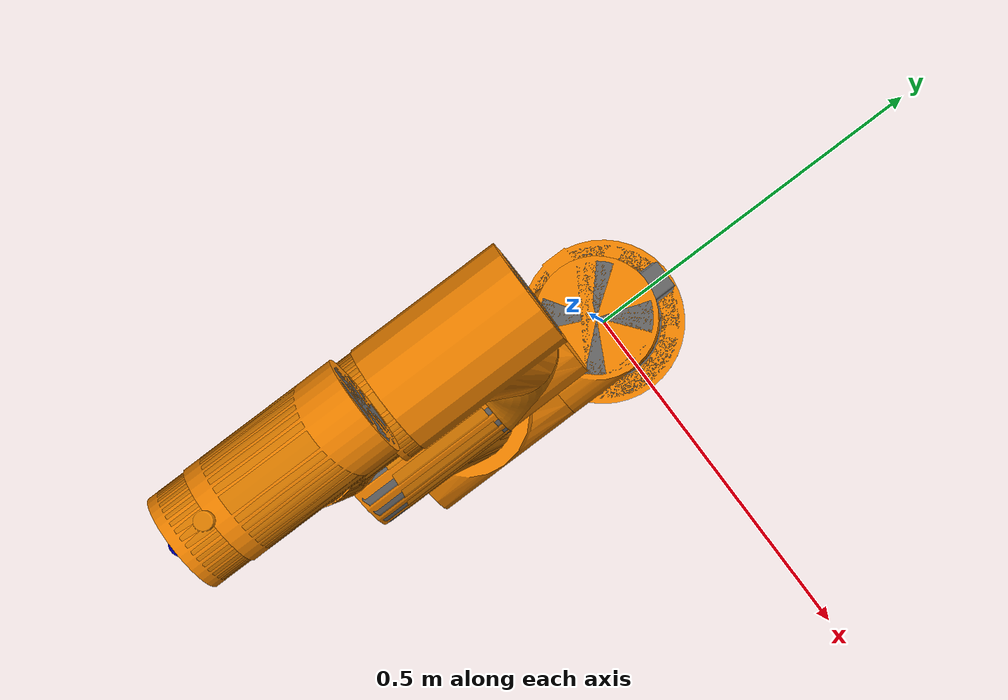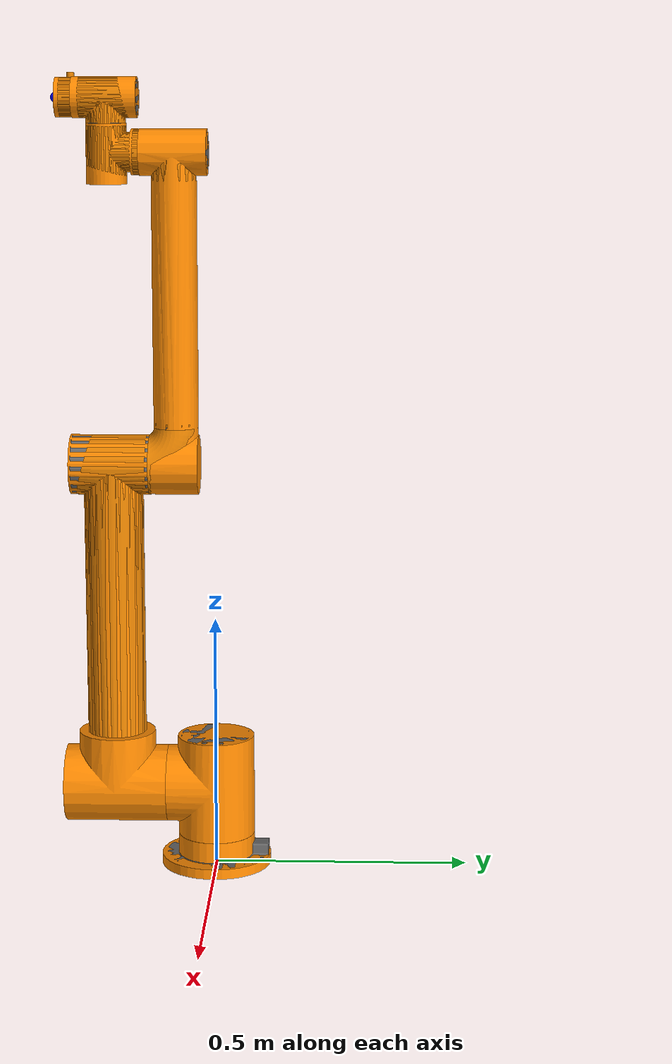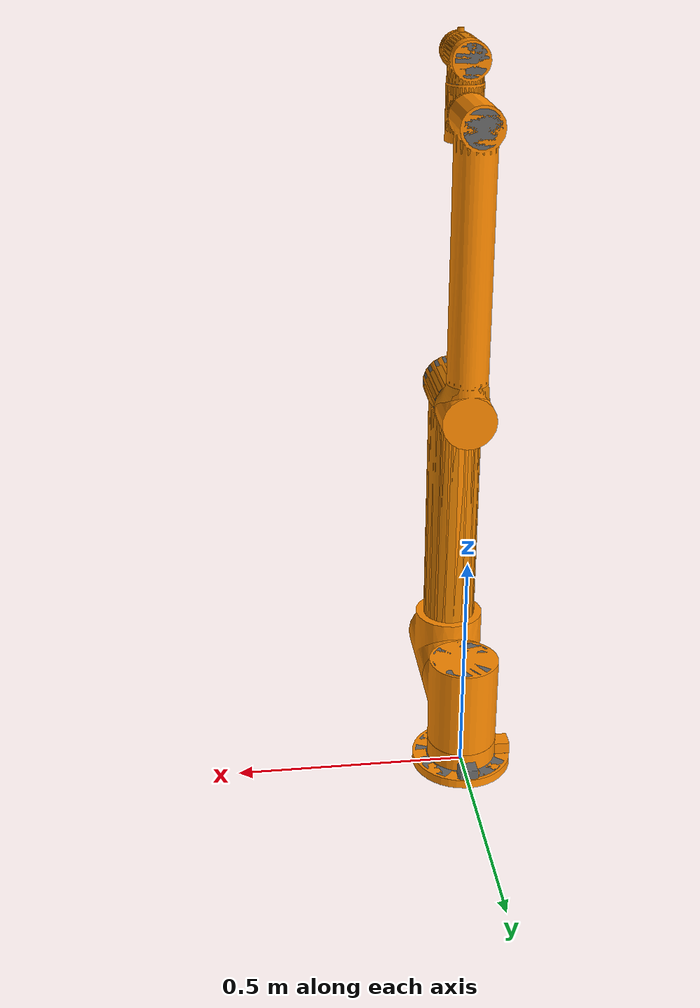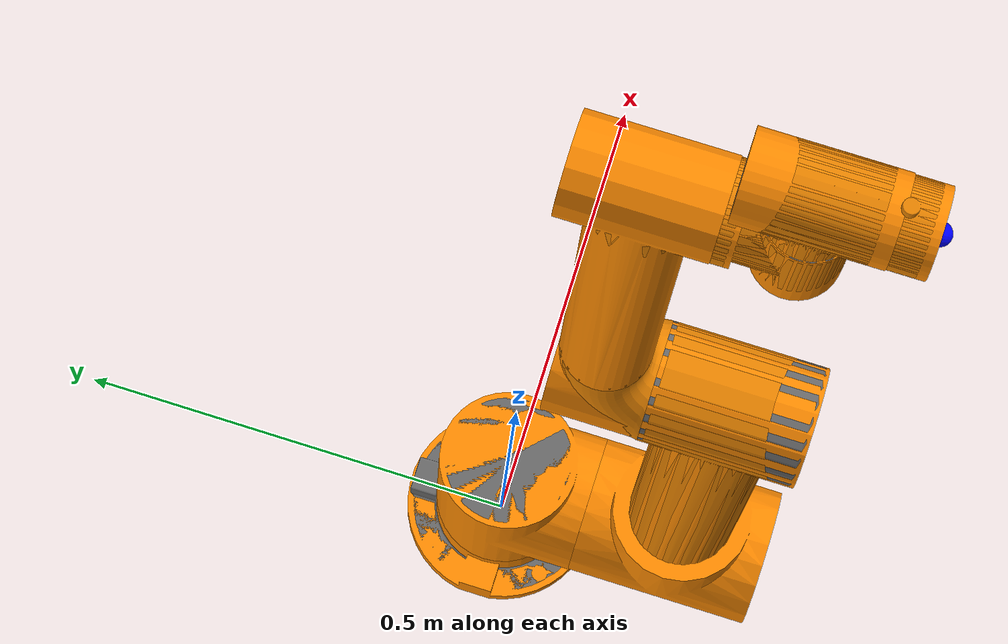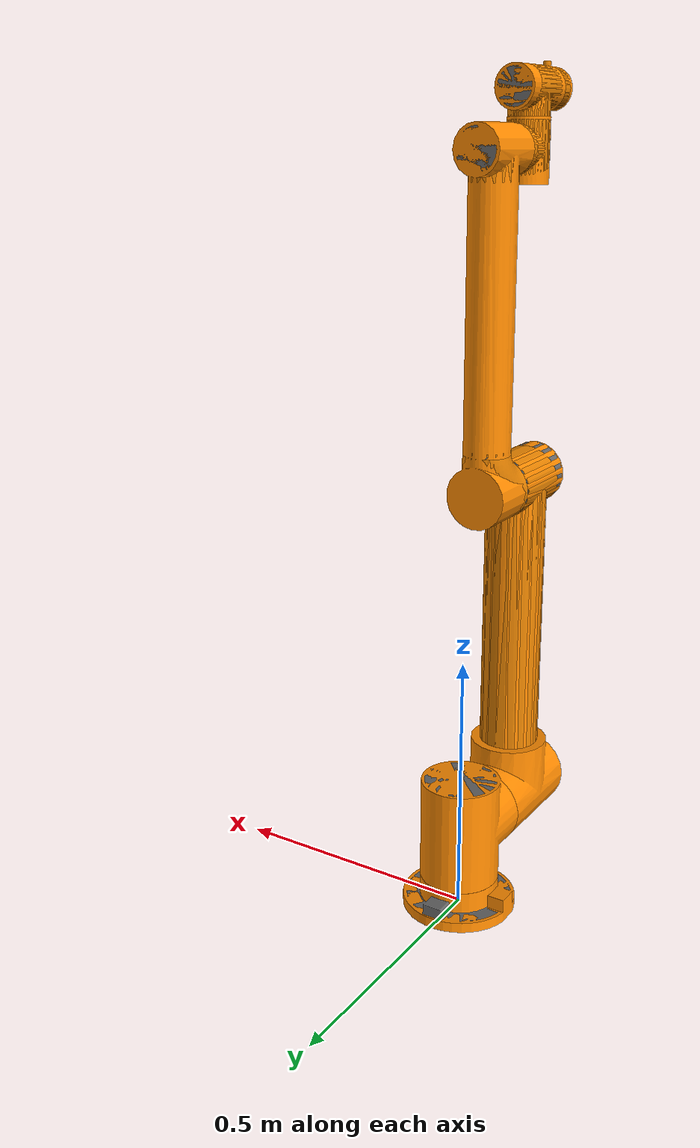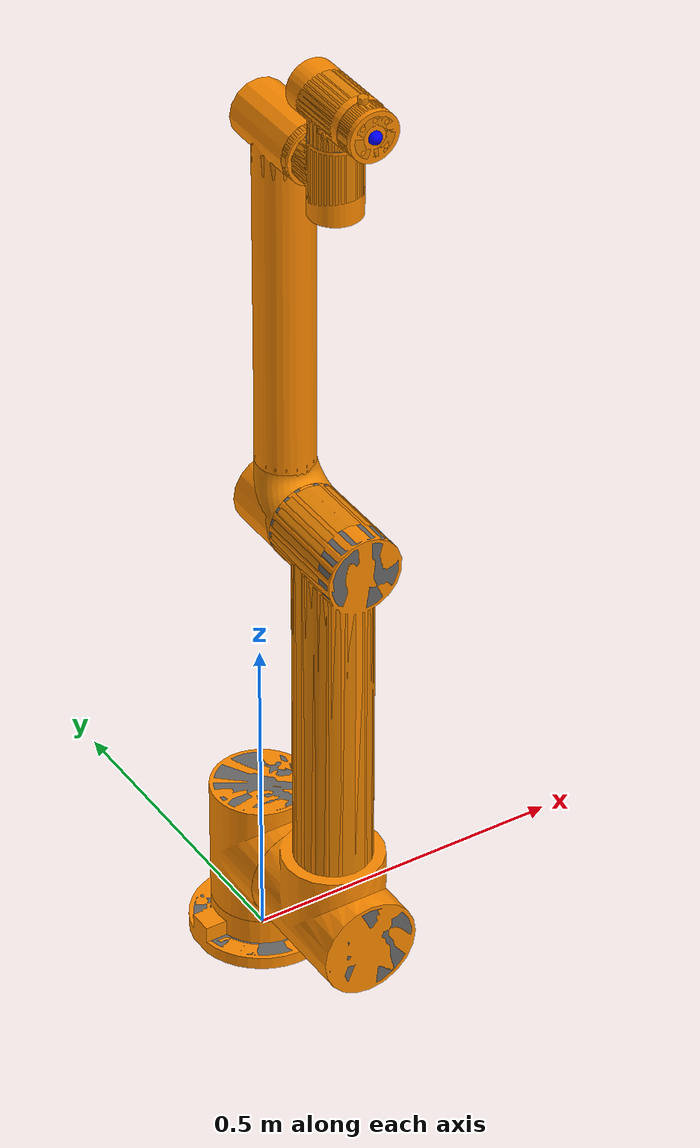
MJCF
<mujoco model="aubo_i10">

  <asset>
    <mesh name="link0" file="meshes/link0.STL"/>
    <mesh name="link1" file="meshes/link1.STL"/>
    <mesh name="link2" file="meshes/link2.STL"/>
    <mesh name="link3" file="meshes/link3.STL"/>
    <mesh name="link4" file="meshes/link4.STL"/>
    <mesh name="link5" file="meshes/link5.STL"/>
    <mesh name="link6" file="meshes/link6.STL"/>

    <material name="MaterialFBXASC032FBXASC03528" specular="0.0" shininess="0.25" rgba="0.411765 0.411765 0.411765 1.000000"/>
    <material name="MaterialFBXASC032FBXASC03529" specular="0.0" shininess="0.25" rgba="0.909804 0.513726 0.000000 1.000000"/>
    <mesh name="link0_vis" file="obj_meshes/link0/link0.obj"/>
    <mesh name="link1_0_vis" file="obj_meshes/link1/link1_0.obj"/>
    <mesh name="link1_1_vis" file="obj_meshes/link1/link1_1.obj"/>
    <mesh name="link2_0_vis" file="obj_meshes/link2/link2_0.obj"/>
    <mesh name="link2_1_vis" file="obj_meshes/link2/link2_1.obj"/>
    <mesh name="link3_0_vis" file="obj_meshes/link3/link3_0.obj"/>
    <mesh name="link3_1_vis" file="obj_meshes/link3/link3_1.obj"/>
    <mesh name="link4_0_vis" file="obj_meshes/link4/link4_0.obj"/>
    <mesh name="link4_1_vis" file="obj_meshes/link4/link4_1.obj"/>
    <mesh name="link5_0_vis" file="obj_meshes/link5/link5_0.obj"/>
    <mesh name="link5_1_vis" file="obj_meshes/link5/link5_1.obj"/>
    <mesh name="link6_vis" file="obj_meshes/link6/link6.obj"/>
  </asset>

  <actuator>
    <motor ctrllimited="true" ctrlrange="-267 267" joint="shoulder_joint" name="torq_j1"/>
    <motor ctrllimited="true" ctrlrange="-267 267" joint="upperArm_joint" name="torq_j2"/>
    <motor ctrllimited="true" ctrlrange="-133.0 133.0" joint="foreArm_joint" name="torq_j3"/>
    <motor ctrllimited="true" ctrlrange="-49.0 49.0" joint="wrist1_joint" name="torq_j4"/>
    <motor ctrllimited="true" ctrlrange="-13.5 13.5" joint="wrist2_joint" name="torq_j5"/>
    <motor ctrllimited="true" ctrlrange="-13.5 13.5" joint="wrist3_joint" name="torq_j6"/>
  </actuator>

  <worldbody>
  <body name="base" pos="0 0 0">
    <camera mode="fixed" name="robotview" pos="1.0 0 0.4" quat="0.653 0.271 0.271 0.653"/>
    <site name="right_center" pos="0 0 0" size="0.01" rgba="1 0.3 0.3 1" group="2"/>
    <inertial diaginertia="0 0 0" mass="0" pos="0 0 0"/>
    <geom type="mesh" contype="0" conaffinity="0" group="1" density="0" rgba="1 0.545 0 1" mesh="link0"/>
    <geom type="mesh" material="MaterialFBXASC032FBXASC03528" contype="0" conaffinity="0" group="1" mesh="link0_vis" quat="0.707 0.707 0 0"/>
    <body name="shoulder_Link" pos="0 0 0.1632" quat="0 0 0 1">
      <inertial pos="-4e-06 0.005112 -0.026275" quat="0.997565 -0.0697219 -1.82331e-05 0.00151628" mass="10.1801" diaginertia="0.043326 0.0424812 0.0296538"/>
      <joint name="shoulder_joint" pos="0 0 0" axis="0 0 1" range="-6.28319 6.28319" actuatorfrcrange="-267 267" damping="0.1"/>
      <geom type="mesh" contype="0" conaffinity="0" group="0" density="0" rgba="1 0.545 0 1" mesh="link1"/>
      <geom type="mesh" material="MaterialFBXASC032FBXASC03529" contype="0" conaffinity="0" group="1" mesh="link1_0_vis" quat="0.707 0.707 0 0"/>
      <geom type="mesh" material="MaterialFBXASC032FBXASC03528" contype="0" conaffinity="0" group="1" mesh="link1_1_vis" quat="0.707 0.707 0 0"/>
      <body name="upperArm_Link" pos="0 0.2013 0" quat="0.5 -0.5 -0.5 -0.5">
        <inertial pos="0.231117 -1.3e-05 -0.022852" quat="0.505617 0.49432 0.493921 0.506005" mass="18.0964" diaginertia="1.52462 1.50645 0.0641157"/>
        <joint name="upperArm_joint" pos="0 0 0" axis="0 0 1" range="-6.28319 6.28319" actuatorfrcrange="-267 267" damping="0.1"/>
        <geom type="mesh" contype="0" conaffinity="0" group="0" density="0" rgba="1 0.545 0 1" mesh="link2"/>
        <geom type="mesh" material="MaterialFBXASC032FBXASC03529" contype="0" conaffinity="0" group="1" mesh="link2_0_vis" quat="0.707 0.707 0 0"/>
        <geom type="mesh" material="MaterialFBXASC032FBXASC03528" contype="0" conaffinity="0" group="1" mesh="link2_1_vis" quat="0.707 0.707 0 0"/>
        <body name="foreArm_Link" pos="0.647 0 0" quat="0 -1 0 0">
          <inertial pos="0.41956 -1.9e-05 0.118053" quat="0.494817 0.505196 0.503176 0.496737" mass="4.44809" diaginertia="0.246194 0.244857 0.00673165"/>
          <joint name="foreArm_joint" pos="0 0 0" axis="0 0 1" range="-6.28319 6.28319" actuatorfrcrange="-133 133" damping="0.1"/>
          <geom type="mesh" contype="0" conaffinity="0" group="0" density="0" rgba="1 0.545 0 1" mesh="link3"/>
          <geom type="mesh" material="MaterialFBXASC032FBXASC03528" contype="0" conaffinity="0" group="1" mesh="link3_0_vis" quat="0.707 0.707 0 0"/>
          <geom type="mesh" material="MaterialFBXASC032FBXASC03529" contype="0" conaffinity="0" group="1" mesh="link3_1_vis" quat="0.707 0.707 0 0"/>
          <body name="wrist1_Link" pos="0.6005 0 0" quat="0 0.707107 0.707107 0">
            <inertial pos="4.7e-05 0.009773 -0.005726" quat="0.634287 0.773094 0.00115623 0.00203894" mass="1.79166" diaginertia="0.00245702 0.0022075 0.00156548"/>
            <joint name="wrist1_joint" pos="0 0 0" axis="0 0 1" range="-6.28319 6.28319" actuatorfrcrange="-49 49" damping="0.01"/>
            <geom type="mesh" contype="0" conaffinity="0" group="0" density="0" rgba="1 0.545 0 1" mesh="link4"/>
            <geom type="mesh" material="MaterialFBXASC032FBXASC03528" contype="0" conaffinity="0" group="1" mesh="link4_0_vis" quat="0.707 0.707 0 0"/>
            <geom type="mesh" material="MaterialFBXASC032FBXASC03529" contype="0" conaffinity="0" group="1" mesh="link4_1_vis" quat="0.707 0.707 0 0"/>
            <body name="wrist2_Link" pos="0 0.1025 0" quat="0.707107 -0.707107 0 0">
              <inertial pos="-3.8e-05 -0.011278 -0.001539" quat="0.725716 0.68759 0.0175555 -0.0157544" mass="1.62802" diaginertia="0.00195105 0.00193322 0.00115172"/>
              <joint name="wrist2_joint" pos="0 0 0" axis="0 0 1" range="-6.28319 6.28319" actuatorfrcrange="-13.5 13.5" damping="0.01"/>
              <geom type="mesh" contype="0" conaffinity="0" group="0" density="0" rgba="1 0.545 0 1" mesh="link5"/>
              <geom type="mesh" material="MaterialFBXASC032FBXASC03528" contype="0" conaffinity="0" group="1" mesh="link5_0_vis" quat="0.707 0.707 0 0"/>
              <geom type="mesh" material="MaterialFBXASC032FBXASC03529" contype="0" conaffinity="0" group="1" mesh="link5_1_vis" quat="0.707 0.707 0 0"/>
              <body name="wrist3_Link" pos="0 -0.094 0" quat="0.707107 0.707107 0 0">
                <inertial pos="2.2e-05 0.0006 -0.017081" quat="0.503459 0.496517 -0.496517 0.503459" mass="0.1978" diaginertia="0.000184014 0.000118 0.000111986"/>
                <joint name="wrist3_joint" pos="0 0 0" axis="0 0 1" range="-6.28319 6.28319" actuatorfrcrange="-13.5 13.5" damping="0.01"/>
                <geom type="mesh" contype="0" conaffinity="0" group="0" density="0" rgba="1 0.545 0 1" mesh="link6"/>
                <geom type="mesh" material="MaterialFBXASC032FBXASC03529" contype="0" conaffinity="0" group="1" mesh="link6_vis" quat="0.707 0.707 0 0"/>
                  <body name="right_hand" pos="0 0 0" quat="0 0 0 1">
                    <site name="ee" pos="0 0 0" size="0.01 0.01 0.01" rgba="0 0 1 1" type="sphere" group="1"/>
			              <site name="ee_x" pos="0 0 0" size="0.005 .1"  quat="0.707105 0.707108 0 0 " rgba="1 0 0 0" type="cylinder" group="1"/>
			              <site name="ee_z" pos="0 0 0" size="0.005 .1" quat="0.707105 0 0 0.707108" rgba="0 0 1 0" type="cylinder" group="1"/>
			              <site name="ee_y" pos="0 0 0" size="0.005 .1" quat="0.707105 0 0.707108 0 " rgba="0 1 0 0" type="cylinder" group="1"/>
                    <!-- This camera points out from the eef. -->
                    <camera mode="fixed" name="eye_in_hand" pos="0.05 0 0" quat="0 0.707108 0.707108 0" fovy="75"/>
                    <!-- To add gripper -->
                  </body>
              </body>
            </body>
          </body>
        </body>
      </body>
    </body>
  </body>
  </worldbody>
</mujoco>
